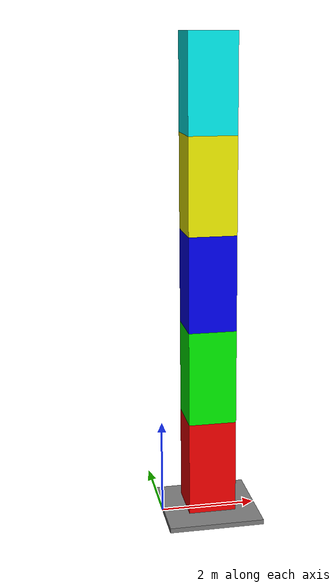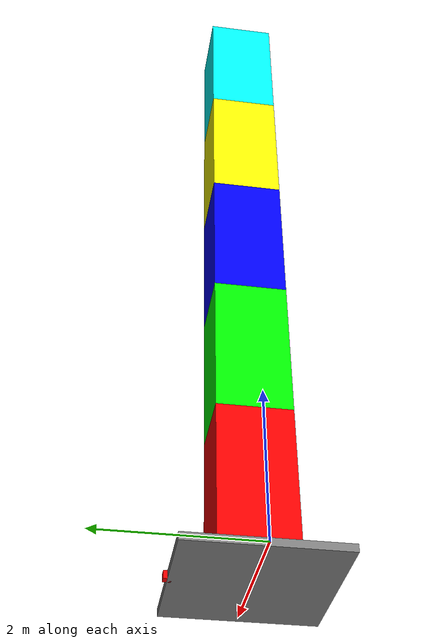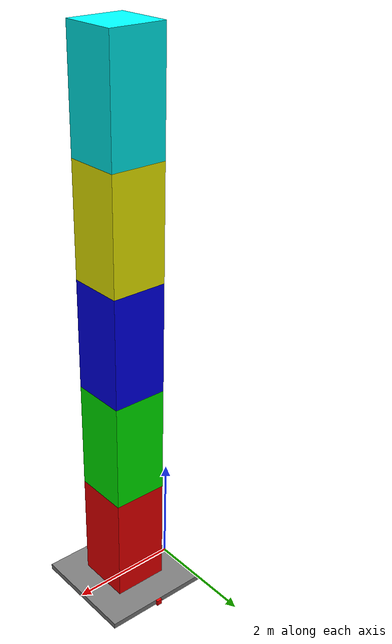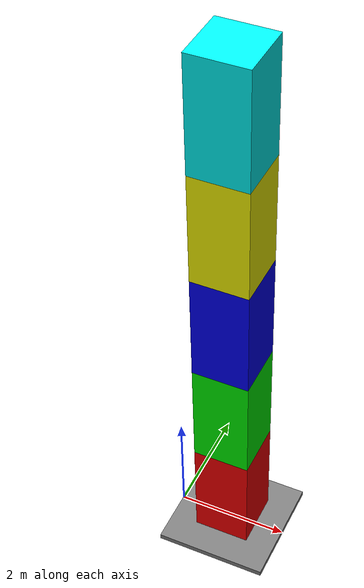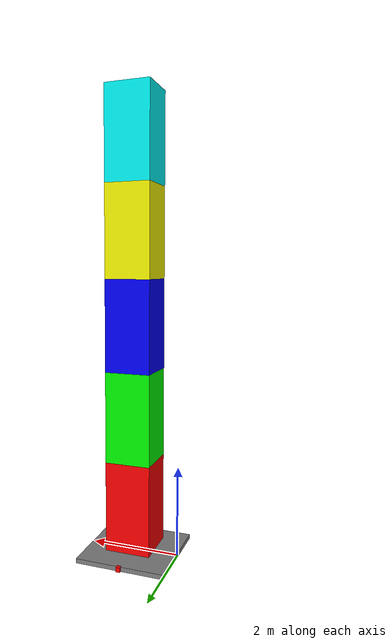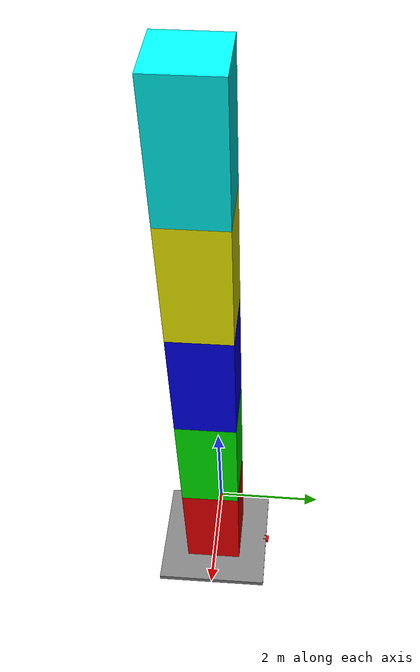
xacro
<?xml version="1.0"?>
<robot xmlns:xacro="http://www.ros.org/wiki/xacro" name="twin">
    <material name="gray">
        <color rgba="0.5 0.5 0.5 1"/>
    </material>
    <material name="white">
        <color rgba="1 1 1 1"/>
    </material>
    <material name="black">
        <color rgba="0 0 0 1"/>
    </material>
    <material name="red">
        <color rgba="1 0 0 1"/>
    </material>
    <material name="green">
        <color rgba="0 1 0 1"/>
    </material>
    <material name="blue">
        <color rgba="0 0 1 1"/>
    </material>
    <material name="yellow">
        <color rgba="1 1 0 1"/>
    </material>
    <material name="cyan">
        <color rgba="0 1 1 1"/>
    </material>
    <material name="magenta">
        <color rgba="1 0 1 1"/>
    </material>

    <link name="world"> </link>
    <joint name="world_to_table" type="fixed">
        <origin xyz="1 0 0" rpy="0 0 0"/>
        <parent link="world"/>
        <child link="table"/>
    </joint>

    <link name="table">
        <visual>
            <origin xyz="0 0 0" rpy="0 0 0"/>
            <geometry>
                <box size="2 2 0.1"/>
            </geometry>
            <material name="gray"/>
        </visual>
        <collision>
            <origin xyz="1 0 0" rpy="0 0 0"/>
            <geometry>
                <box size="2 2 0.1"/>
            </geometry>
        </collision>
    </link>

    <!-- Joint for stacking the floors vertically and allowing horizontal movement -->
    <joint name="table_to_firstFloor" type="prismatic">
        <origin xyz="0 0 0.1" rpy="0 0 0"/> <!-- Positioning first floor directly on the table -->
        <parent link="table"/>
        <child link="firstFloor"/>
        <axis xyz="1 0 0"/> <!-- Horizontal movement along the x-axis -->
        <limit lower="-0.1" upper="0.1" effort="1000" velocity="1.0"/>
    </joint>

    <link name="firstFloor">
        <visual>
            <origin xyz="0 0 1" rpy="0 0 0"/>
            <geometry>
                <box size="1 1 2"/>
            </geometry>
            <material name="red"/> <!-- Color changed to red -->
        </visual>
        <collision>
            <origin xyz="0 0 0" rpy="0 0 0"/>
            <geometry>
                <box size="1 1 2"/>
            </geometry>
        </collision>
    </link>

    <!-- Joint for placing second floor on top of first floor, horizontal movement -->
    <joint name="firstFloor_to_secondFloor" type="prismatic">
        <origin xyz="0 0 2" rpy="0 0 0"/> <!-- Placing second floor above the first floor -->
        <parent link="firstFloor"/>
        <child link="secondFloor"/>
        <axis xyz="1 0 0"/> <!-- Horizontal movement along the x-axis -->
        <limit lower="-0.1" upper="0.1" effort="1000" velocity="1.0"/>
    </joint>

    <link name="secondFloor">
        <visual>
            <origin xyz="0 0 1" rpy="0 0 0"/>
            <geometry>
                <box size="1 1 2"/>
            </geometry>
            <material name="green"/> <!-- Color changed to green -->
        </visual>
        <collision>
            <origin xyz="0 0 1" rpy="0 0 0"/>
            <geometry>
                <box size="1 1 2"/>
            </geometry>
        </collision>
    </link>

    <!-- Joint for placing third floor on top of second floor, horizontal movement -->
    <joint name="secondFloor_to_thirdFloor" type="prismatic">
        <origin xyz="0 0 2" rpy="0 0 0"/> <!-- Placing third floor above the second floor -->
        <parent link="secondFloor"/>
        <child link="thirdFloor"/>
        <axis xyz="1 0 0"/> <!-- Horizontal movement along the x-axis -->
        <limit lower="-0.1" upper="0.1" effort="1000" velocity="1.0"/>
    </joint>

    <link name="thirdFloor">
        <visual>
            <origin xyz="0 0 1" rpy="0 0 0"/>
            <geometry>
                <box size="1 1 2"/>
            </geometry>
            <material name="blue"/> <!-- Color changed to blue -->
        </visual>
        <collision>
            <origin xyz="0 0 1" rpy="0 0 0"/>
            <geometry>
                <box size="1 1 2"/>
            </geometry>
        </collision>
    </link>

    <!-- Joint for placing fourth floor on top of third floor, horizontal movement -->
    <joint name="thirdFloor_to_fourthFloor" type="prismatic">
        <origin xyz="0 0 2" rpy="0 0 0"/> <!-- Placing fourth floor above the third floor -->
        <parent link="thirdFloor"/>
        <child link="fourthFloor"/>
        <axis xyz="1 0 0"/> <!-- Horizontal movement along the x-axis -->
        <limit lower="-0.1" upper="0.1" effort="1000" velocity="1.0"/>
    </joint>

    <link name="fourthFloor">
        <visual>
            <origin xyz="0 0 1" rpy="0 0 0"/>
            <geometry>
                <box size="1 1  2"/>
            </geometry>
            <material name="yellow"/> <!-- Color changed to yellow -->
        </visual>
        <collision>
            <origin xyz="0 0 0" rpy="0 0 0"/>
            <geometry>
                <box size="1 1 2"/>
            </geometry>
        </collision>
    </link>

    <!-- Joint for placing fifth floor on top of fourth floor, horizontal movement -->
    <joint name="fourthFloor_to_fifthFloor" type="prismatic">
        <origin xyz="0 0 2" rpy="0 0 0"/> <!-- Placing fifth floor above the fourth floor -->
        <parent link="fourthFloor"/>
        <child link="fifthFloor"/>
        <axis xyz="1 0 0"/> <!-- Horizontal movement along the x-axis -->
        <limit lower="-0.1" upper="0.1" effort="1000" velocity="1.0"/>
    </joint>

    <link name="fifthFloor">
        <visual>
            <origin xyz="0 0 1" rpy="0 0 0"/>
            <geometry>
                <box size="1 1 2 "/>
            </geometry>
            <material name="cyan"/> <!-- Color changed to cyan -->
        </visual>
        <collision>
            <origin xyz="0 0 0" rpy="0 0 0"/>
            <geometry>
                <box size="1 1 2"/>
            </geometry>
        </collision>
    </link>

    <joint name="world_to_camera" type="fixed">
        <parent link="world"/>
        <child link="camera"/>
        <origin xyz="1 1 0" rpy="0 0 0"/>
    </joint>
    <link name="camera">
        <visual>
            <origin xyz="0 0 0" rpy="0 0 0"/>
            <geometry>
                <box size="0.1 0.1 0.1"/>
            </geometry>
            <material name="red"/>
        </visual>
        <collision>
            <origin xyz="0 0 0" rpy="0 0 0"/>
            <geometry>
                <box size="0.1 0.1 0.1"/>
            </geometry>
        </collision>
    </link>
</robot>
